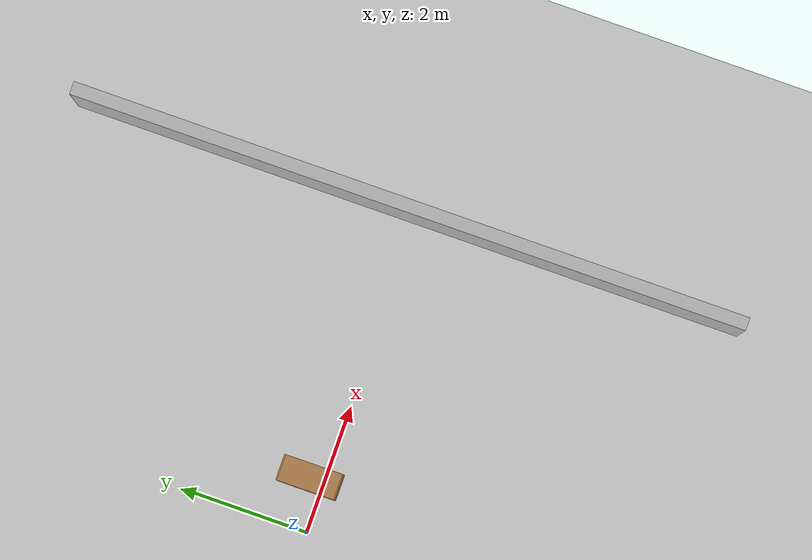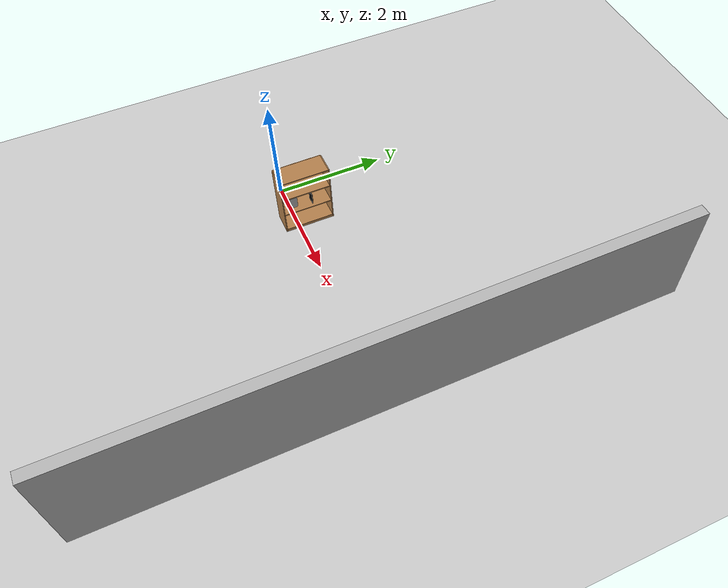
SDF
<sdf version="1.7">
 <world name="default">
  <model name="ground_plane">
   <static>1</static>
   <link name="link">
    <collision name="collision">
     <geometry><plane><normal>0 0 1</normal><size>100 100</size></plane></geometry>
     <surface><friction><ode><mu>100</mu><mu2>50</mu2></ode></friction></surface>
    </collision>
    <visual name="visual">
     <cast_shadows>0</cast_shadows>
     <geometry><plane><normal>0 0 1</normal><size>100 100</size></plane></geometry>
     <material>
      <script><uri>file://media/materials/scripts/gazebo.material</uri><name>Gazebo/Grey</name></script>
     </material>
    </visual>
   </link>
  </model>
  <model name="wall_4_model">
   <pose>5 0.130228 1 0 -0 0</pose>
   <static>1</static>
   <link name="wall_4_body">
    <inertial>
     <mass>1</mass>
     <inertia><ixx>1</ixx><ixy>0</ixy><ixz>0</ixz><iyy>1</iyy><iyz>0</iyz><izz>1</izz></inertia>
    </inertial>
    <collision name="collision"><geometry><box><size>0.2 10.4437 2</size></box></geometry></collision>
    <visual name="visual"><geometry><box><size>0.2 10.4437 2</size></box></geometry></visual>
   </link>
  </model>
  <model name="bookshelf_clone_9">
   <static>1</static>
   <link name="link">
    <inertial><mass>1</mass></inertial>
    <collision name="back">
     <pose>0 0.005 0.6 0 -0 0</pose>
     <geometry><box><size>0.9 0.01 1.2</size></box></geometry>
    </collision>
    <visual name="visual1">
     <pose>0 0.005 0.6 0 -0 0</pose>
     <geometry><box><size>0.9 0.01 1.2</size></box></geometry>
     <material>
      <script><uri>file://media/materials/scripts/gazebo.material</uri><name>Gazebo/Wood</name></script>
     </material>
    </visual>
    <collision name="left_side">
     <pose>0.45 -0.195 0.6 0 -0 0</pose>
     <geometry><box><size>0.02 0.4 1.2</size></box></geometry>
    </collision>
    <visual name="visual2">
     <pose>0.45 -0.195 0.6 0 -0 0</pose>
     <geometry><box><size>0.02 0.4 1.2</size></box></geometry>
     <material>
      <script><uri>file://media/materials/scripts/gazebo.material</uri><name>Gazebo/Wood</name></script>
     </material>
    </visual>
    <collision name="right_side">
     <pose>-0.45 -0.195 0.6 0 -0 0</pose>
     <geometry><box><size>0.02 0.4 1.2</size></box></geometry>
    </collision>
    <visual name="visual3">
     <pose>-0.45 -0.195 0.6 0 -0 0</pose>
     <geometry><box><size>0.02 0.4 1.2</size></box></geometry>
     <material>
      <script><uri>file://media/materials/scripts/gazebo.material</uri><name>Gazebo/Wood</name></script>
     </material>
    </visual>
    <collision name="bottom">
     <pose>0 -0.195 0.03 0 -0 0</pose>
     <geometry><box><size>0.88 0.4 0.06</size></box></geometry>
    </collision>
    <visual name="visual4">
     <pose>0 -0.195 0.03 0 -0 0</pose>
     <geometry><box><size>0.88 0.4 0.06</size></box></geometry>
     <material>
      <script><uri>file://media/materials/scripts/gazebo.material</uri><name>Gazebo/Wood</name></script>
     </material>
    </visual>
    <collision name="top">
     <pose>0 -0.195 1.19 0 -0 0</pose>
     <geometry><box><size>0.88 0.4 0.02</size></box></geometry>
    </collision>
    <visual name="visual5">
     <pose>0 -0.195 1.19 0 -0 0</pose>
     <geometry><box><size>0.88 0.4 0.02</size></box></geometry>
     <material>
      <script><uri>file://media/materials/scripts/gazebo.material</uri><name>Gazebo/Wood</name></script>
     </material>
    </visual>
    <collision name="low_shelf">
     <pose>0 -0.195 0.43 0 -0 0</pose>
     <geometry><box><size>0.88 0.4 0.02</size></box></geometry>
    </collision>
    <visual name="visual6">
     <pose>0 -0.195 0.43 0 -0 0</pose>
     <geometry><box><size>0.88 0.4 0.02</size></box></geometry>
     <material>
      <script><uri>file://media/materials/scripts/gazebo.material</uri><name>Gazebo/Wood</name></script>
     </material>
    </visual>
    <collision name="high_shelf">
     <pose>0 -0.195 0.8 0 -0 0</pose>
     <geometry><box><size>0.88 0.4 0.02</size></box></geometry>
    </collision>
    <visual name="visual7">
     <pose>0 -0.195 0.8 0 -0 0</pose>
     <geometry><box><size>0.88 0.4 0.02</size></box></geometry>
     <material>
      <script><uri>file://media/materials/scripts/gazebo.material</uri><name>Gazebo/Wood</name></script>
     </material>
    </visual>
   </link>
   <pose>0.601436 0.210613 0 0 -0 1.57111</pose>
  </model>
  <model name="book_14">
   <link name="cover">
    <pose>0 -0.000108 0.015405 0 -0 0</pose>
    <visual name="visual">
     <geometry><box><size>0.245 0.16 0.03</size></box></geometry>
     <material>
      <script>
       <uri>file:///home/bruno/Downloads/lib_world_models/book_14/materials/scripts</uri>
       <uri>file:///home/bruno/Downloads/lib_world_models/book_14/materials/textures</uri>
       <name>book_14</name>
      </script>
     </material>
    </visual>
    <collision name="collision"><geometry><box><size>0.245 0.16 0.03</size></box></geometry></collision>
   </link>
   <link name="page">
    <pose>0 0.000608 0.015405 0 -0 0</pose>
    <visual name="visual">
     <geometry><box><size>0.24502 0.15862 0.028</size></box></geometry>
     <material>
      <lighting>1</lighting>
      <ambient>1 1 1 1</ambient>
      <diffuse>1 1 1 1</diffuse>
      <specular>0.01 0.01 0.01 1</specular>
      <emissive>0 0 0 1</emissive>
      <shader type="vertex"><normal_map>__default__</normal_map></shader>
     </material>
    </visual>
    <collision name="collision"><geometry><box><size>0.245 0.16 0.03</size></box></geometry></collision>
   </link>
   <static>1</static>
   <pose>0.863435 -0.02831 0.568279 -3.14159 -1.56732 -0.025302</pose>
  </model>
  <model name="retry_6_clone_5_clone_3">
   <link name="link">
    <inertial>
     <mass>0.1</mass>
     <inertia>
      <ixx>0.00037145</ixx>
      <ixy>0</ixy>
      <ixz>0</ixz>
      <iyy>0.00019446</iyy>
      <iyz>0</iyz>
      <izz>0.00056106</izz>
     </inertia>
    </inertial>
    <visual name="visual">
     <geometry><box><size>0.151804 0.220309 0.017052</size></box></geometry>
     <material>
      <shader type="pixel"><normal_map>__default__</normal_map></shader>
      <script><name>ModelPreview_7::link::visual_MATERIAL_</name><uri>__default__</uri></script>
      <ambient>0 0 0 1</ambient>
      <diffuse>0 0 0 1</diffuse>
      <specular>0 0 0 1</specular>
      <emissive>0 0 0 1</emissive>
     </material>
    </visual>
    <collision name="collision">
     <geometry><box><size>0.151804 0.220309 0.017052</size></box></geometry>
     <surface>
      <friction>
       <ode><mu>3.5</mu><mu2>3.5</mu2><fdir1>0 0 0</fdir1><slip1>-0</slip1><slip2>-0</slip2></ode>
       <torsional>
        <coefficient>1</coefficient>
        <patch_radius>0</patch_radius>
        <surface_radius>0</surface_radius>
        <use_patch_radius>1</use_patch_radius>
        <ode><slip>0</slip></ode>
       </torsional>
      </friction>
      <bounce><restitution_coefficient>0</restitution_coefficient><threshold>1e+06</threshold></bounce>
      <contact>
       <collide_without_contact>0</collide_without_contact>
       <collide_without_contact_bitmask>1</collide_without_contact_bitmask>
       <collide_bitmask>1</collide_bitmask>
       <ode>
        <soft_cfm>0</soft_cfm>
        <soft_erp>0.2</soft_erp>
        <kp>1e+13</kp>
        <kd>1</kd>
        <max_vel>0.01</max_vel>
        <min_depth>0</min_depth>
       </ode>
       <bullet>
        <split_impulse>1</split_impulse>
        <split_impulse_penetration_threshold>-0.01</split_impulse_penetration_threshold>
        <soft_cfm>0</soft_cfm>
        <soft_erp>0.2</soft_erp>
        <kp>1e+13</kp>
        <kd>1</kd>
       </bullet>
      </contact>
     </surface>
    </collision>
   </link>
   <static>0</static>
   <pose>0.858844 0.321385 0.550154 -1.5708 1.1e-05 9.6e-05</pose>
  </model>
 </world>
</sdf>
